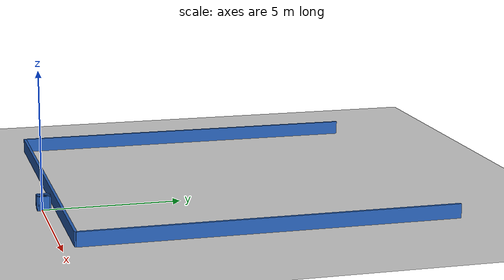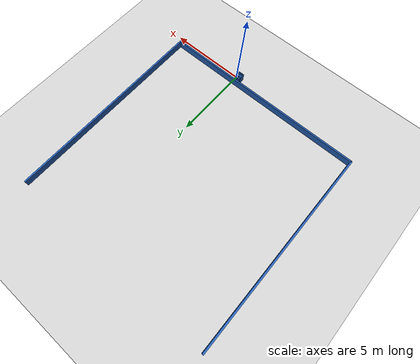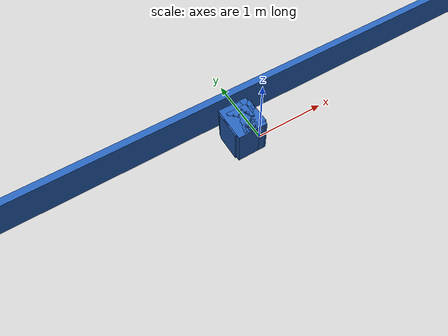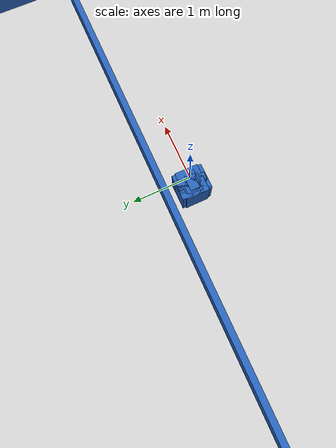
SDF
<?xml version="1.0" ?>
    <sdf version="1.5">
      <world name="default">
        <!-- A global light source -->
        <include>
          <uri>model://sun</uri>
        </include>
        <!-- A ground plane -->
        <include>
          <uri>model://ground_plane</uri>
        </include>

    <model name='libopen_space_final_T2B_126_41'>
      <static>1</static>
      <pose frame=''>-0.225000 0.075000 0.000000 0.000000 0.000000 0.000000</pose>
      <link name='link'>
        <inertial>
          <mass>1</mass>
          <inertia>
            <ixx>0.145833</ixx>
            <ixy>0</ixy>
            <ixz>0</ixz>
            <iyy>0.145833</iyy>
            <iyz>0</iyz>
            <izz>0.125</izz>
          </inertia>
        </inertial>
        <collision name='collision'>
          <geometry>
            <box>
              <size>0.35 0.21 1</size>
            </box>
          </geometry>
          <max_contacts>10</max_contacts>
          <surface>
            <contact>
              <ode/>
            </contact>
            <bounce/>
            <friction>
              <torsional>
                <ode/>
              </torsional>
              <ode/>
            </friction>
          </surface>
        </collision>
        <visual name='visual'>
          <geometry>
            <box>
              <size>0.35 0.21 1</size>
            </box>
          </geometry>
	    <material>
              <ambient>0.152000 0.379000 0.720000 1</ambient>
	      <diffuse>0.152000 0.379000 0.720000 1</diffuse>
          </material>
          <material>
            <script>
              <name>Gazebo/Grey</name>
              <uri>file://media/materials/scripts/gazebo.material</uri>
            </script>
          </material>
        </visual>
        <self_collide>0</self_collide>
        <kinematic>0</kinematic>
        <gravity>1</gravity>
      </link>
      <plugin name='libopen_space_final_T2B_126_41' filename='libopen_space_final_T2B_126_41.so'/>
    </model>

    <model name='libopen_space_final_T2B_79_93'>
      <static>1</static>
      <pose frame=''>-0.225000 0.075000 0.000000 0.000000 0.000000 0.000000</pose>
      <link name='link'>
        <inertial>
          <mass>1</mass>
          <inertia>
            <ixx>0.145833</ixx>
            <ixy>0</ixy>
            <ixz>0</ixz>
            <iyy>0.145833</iyy>
            <iyz>0</iyz>
            <izz>0.125</izz>
          </inertia>
        </inertial>
        <collision name='collision'>
          <geometry>
            <box>
              <size>0.31 0.27 1</size>
            </box>
          </geometry>
          <max_contacts>10</max_contacts>
          <surface>
            <contact>
              <ode/>
            </contact>
            <bounce/>
            <friction>
              <torsional>
                <ode/>
              </torsional>
              <ode/>
            </friction>
          </surface>
        </collision>
        <visual name='visual'>
          <geometry>
            <box>
              <size>0.31 0.27 1</size>
            </box>
          </geometry>
	    <material>
              <ambient>0.152000 0.379000 0.720000 1</ambient>
	      <diffuse>0.152000 0.379000 0.720000 1</diffuse>
          </material>
          <material>
            <script>
              <name>Gazebo/Grey</name>
              <uri>file://media/materials/scripts/gazebo.material</uri>
            </script>
          </material>
        </visual>
        <self_collide>0</self_collide>
        <kinematic>0</kinematic>
        <gravity>1</gravity>
      </link>
      <plugin name='libopen_space_final_T2B_79_93' filename='libopen_space_final_T2B_79_93.so'/>
    </model>

    <model name='libopen_space_final_T2B_92_34'>
      <static>1</static>
      <pose frame=''>-0.225000 0.075000 0.000000 0.000000 0.000000 0.000000</pose>
      <link name='link'>
        <inertial>
          <mass>1</mass>
          <inertia>
            <ixx>0.145833</ixx>
            <ixy>0</ixy>
            <ixz>0</ixz>
            <iyy>0.145833</iyy>
            <iyz>0</iyz>
            <izz>0.125</izz>
          </inertia>
        </inertial>
        <collision name='collision'>
          <geometry>
            <box>
              <size>0.13 0.46 1</size>
            </box>
          </geometry>
          <max_contacts>10</max_contacts>
          <surface>
            <contact>
              <ode/>
            </contact>
            <bounce/>
            <friction>
              <torsional>
                <ode/>
              </torsional>
              <ode/>
            </friction>
          </surface>
        </collision>
        <visual name='visual'>
          <geometry>
            <box>
              <size>0.13 0.46 1</size>
            </box>
          </geometry>
	    <material>
              <ambient>0.152000 0.379000 0.720000 1</ambient>
	      <diffuse>0.152000 0.379000 0.720000 1</diffuse>
          </material>
          <material>
            <script>
              <name>Gazebo/Grey</name>
              <uri>file://media/materials/scripts/gazebo.material</uri>
            </script>
          </material>
        </visual>
        <self_collide>0</self_collide>
        <kinematic>0</kinematic>
        <gravity>1</gravity>
      </link>
      <plugin name='libopen_space_final_T2B_92_34' filename='libopen_space_final_T2B_92_34.so'/>
    </model>

    <model name='libopen_space_final_T2B_147_27'>
      <static>1</static>
      <pose frame=''>-0.225000 0.075000 0.000000 0.000000 0.000000 0.000000</pose>
      <link name='link'>
        <inertial>
          <mass>1</mass>
          <inertia>
            <ixx>0.145833</ixx>
            <ixy>0</ixy>
            <ixz>0</ixz>
            <iyy>0.145833</iyy>
            <iyz>0</iyz>
            <izz>0.125</izz>
          </inertia>
        </inertial>
        <collision name='collision'>
          <geometry>
            <box>
              <size>0.43 0.20 1</size>
            </box>
          </geometry>
          <max_contacts>10</max_contacts>
          <surface>
            <contact>
              <ode/>
            </contact>
            <bounce/>
            <friction>
              <torsional>
                <ode/>
              </torsional>
              <ode/>
            </friction>
          </surface>
        </collision>
        <visual name='visual'>
          <geometry>
            <box>
              <size>0.43 0.20 1</size>
            </box>
          </geometry>
	    <material>
              <ambient>0.152000 0.379000 0.720000 1</ambient>
	      <diffuse>0.152000 0.379000 0.720000 1</diffuse>
          </material>
          <material>
            <script>
              <name>Gazebo/Grey</name>
              <uri>file://media/materials/scripts/gazebo.material</uri>
            </script>
          </material>
        </visual>
        <self_collide>0</self_collide>
        <kinematic>0</kinematic>
        <gravity>1</gravity>
      </link>
      <plugin name='libopen_space_final_T2B_147_27' filename='libopen_space_final_T2B_147_27.so'/>
    </model>

    <model name='libopen_space_final_T2B_55_44'>
      <static>1</static>
      <pose frame=''>-0.225000 0.075000 0.000000 0.000000 0.000000 0.000000</pose>
      <link name='link'>
        <inertial>
          <mass>1</mass>
          <inertia>
            <ixx>0.145833</ixx>
            <ixy>0</ixy>
            <ixz>0</ixz>
            <iyy>0.145833</iyy>
            <iyz>0</iyz>
            <izz>0.125</izz>
          </inertia>
        </inertial>
        <collision name='collision'>
          <geometry>
            <box>
              <size>0.21 0.46 1</size>
            </box>
          </geometry>
          <max_contacts>10</max_contacts>
          <surface>
            <contact>
              <ode/>
            </contact>
            <bounce/>
            <friction>
              <torsional>
                <ode/>
              </torsional>
              <ode/>
            </friction>
          </surface>
        </collision>
        <visual name='visual'>
          <geometry>
            <box>
              <size>0.21 0.46 1</size>
            </box>
          </geometry>
	    <material>
              <ambient>0.152000 0.379000 0.720000 1</ambient>
	      <diffuse>0.152000 0.379000 0.720000 1</diffuse>
          </material>
          <material>
            <script>
              <name>Gazebo/Grey</name>
              <uri>file://media/materials/scripts/gazebo.material</uri>
            </script>
          </material>
        </visual>
        <self_collide>0</self_collide>
        <kinematic>0</kinematic>
        <gravity>1</gravity>
      </link>
      <plugin name='libopen_space_final_T2B_55_44' filename='libopen_space_final_T2B_55_44.so'/>
    </model>

    <model name='libopen_space_final_T2B_105_94'>
      <static>1</static>
      <pose frame=''>-0.225000 0.075000 0.000000 0.000000 0.000000 0.000000</pose>
      <link name='link'>
        <inertial>
          <mass>1</mass>
          <inertia>
            <ixx>0.145833</ixx>
            <ixy>0</ixy>
            <ixz>0</ixz>
            <iyy>0.145833</iyy>
            <iyz>0</iyz>
            <izz>0.125</izz>
          </inertia>
        </inertial>
        <collision name='collision'>
          <geometry>
            <box>
              <size>0.29 0.32 1</size>
            </box>
          </geometry>
          <max_contacts>10</max_contacts>
          <surface>
            <contact>
              <ode/>
            </contact>
            <bounce/>
            <friction>
              <torsional>
                <ode/>
              </torsional>
              <ode/>
            </friction>
          </surface>
        </collision>
        <visual name='visual'>
          <geometry>
            <box>
              <size>0.29 0.32 1</size>
            </box>
          </geometry>
	    <material>
              <ambient>0.152000 0.379000 0.720000 1</ambient>
	      <diffuse>0.152000 0.379000 0.720000 1</diffuse>
          </material>
          <material>
            <script>
              <name>Gazebo/Grey</name>
              <uri>file://media/materials/scripts/gazebo.material</uri>
            </script>
          </material>
        </visual>
        <self_collide>0</self_collide>
        <kinematic>0</kinematic>
        <gravity>1</gravity>
      </link>
      <plugin name='libopen_space_final_T2B_105_94' filename='libopen_space_final_T2B_105_94.so'/>
    </model>

    <model name='libopen_space_final_T2B_112_98'>
      <static>1</static>
      <pose frame=''>-0.225000 0.075000 0.000000 0.000000 0.000000 0.000000</pose>
      <link name='link'>
        <inertial>
          <mass>1</mass>
          <inertia>
            <ixx>0.145833</ixx>
            <ixy>0</ixy>
            <ixz>0</ixz>
            <iyy>0.145833</iyy>
            <iyz>0</iyz>
            <izz>0.125</izz>
          </inertia>
        </inertial>
        <collision name='collision'>
          <geometry>
            <box>
              <size>0.14 0.48 1</size>
            </box>
          </geometry>
          <max_contacts>10</max_contacts>
          <surface>
            <contact>
              <ode/>
            </contact>
            <bounce/>
            <friction>
              <torsional>
                <ode/>
              </torsional>
              <ode/>
            </friction>
          </surface>
        </collision>
        <visual name='visual'>
          <geometry>
            <box>
              <size>0.14 0.48 1</size>
            </box>
          </geometry>
	    <material>
              <ambient>0.152000 0.379000 0.720000 1</ambient>
	      <diffuse>0.152000 0.379000 0.720000 1</diffuse>
          </material>
          <material>
            <script>
              <name>Gazebo/Grey</name>
              <uri>file://media/materials/scripts/gazebo.material</uri>
            </script>
          </material>
        </visual>
        <self_collide>0</self_collide>
        <kinematic>0</kinematic>
        <gravity>1</gravity>
      </link>
      <plugin name='libopen_space_final_T2B_112_98' filename='libopen_space_final_T2B_112_98.so'/>
    </model>

    <model name='libopen_space_final_T2B_80_26'>
      <static>1</static>
      <pose frame=''>-0.225000 0.075000 0.000000 0.000000 0.000000 0.000000</pose>
      <link name='link'>
        <inertial>
          <mass>1</mass>
          <inertia>
            <ixx>0.145833</ixx>
            <ixy>0</ixy>
            <ixz>0</ixz>
            <iyy>0.145833</iyy>
            <iyz>0</iyz>
            <izz>0.125</izz>
          </inertia>
        </inertial>
        <collision name='collision'>
          <geometry>
            <box>
              <size>0.21 0.27 1</size>
            </box>
          </geometry>
          <max_contacts>10</max_contacts>
          <surface>
            <contact>
              <ode/>
            </contact>
            <bounce/>
            <friction>
              <torsional>
                <ode/>
              </torsional>
              <ode/>
            </friction>
          </surface>
        </collision>
        <visual name='visual'>
          <geometry>
            <box>
              <size>0.21 0.27 1</size>
            </box>
          </geometry>
	    <material>
              <ambient>0.152000 0.379000 0.720000 1</ambient>
	      <diffuse>0.152000 0.379000 0.720000 1</diffuse>
          </material>
          <material>
            <script>
              <name>Gazebo/Grey</name>
              <uri>file://media/materials/scripts/gazebo.material</uri>
            </script>
          </material>
        </visual>
        <self_collide>0</self_collide>
        <kinematic>0</kinematic>
        <gravity>1</gravity>
      </link>
      <plugin name='libopen_space_final_T2B_80_26' filename='libopen_space_final_T2B_80_26.so'/>
    </model>

    <model name='libopen_space_final_T2B_64_52'>
      <static>1</static>
      <pose frame=''>-0.225000 0.075000 0.000000 0.000000 0.000000 0.000000</pose>
      <link name='link'>
        <inertial>
          <mass>1</mass>
          <inertia>
            <ixx>0.145833</ixx>
            <ixy>0</ixy>
            <ixz>0</ixz>
            <iyy>0.145833</iyy>
            <iyz>0</iyz>
            <izz>0.125</izz>
          </inertia>
        </inertial>
        <collision name='collision'>
          <geometry>
            <box>
              <size>0.30 0.19 1</size>
            </box>
          </geometry>
          <max_contacts>10</max_contacts>
          <surface>
            <contact>
              <ode/>
            </contact>
            <bounce/>
            <friction>
              <torsional>
                <ode/>
              </torsional>
              <ode/>
            </friction>
          </surface>
        </collision>
        <visual name='visual'>
          <geometry>
            <box>
              <size>0.30 0.19 1</size>
            </box>
          </geometry>
	    <material>
              <ambient>0.152000 0.379000 0.720000 1</ambient>
	      <diffuse>0.152000 0.379000 0.720000 1</diffuse>
          </material>
          <material>
            <script>
              <name>Gazebo/Grey</name>
              <uri>file://media/materials/scripts/gazebo.material</uri>
            </script>
          </material>
        </visual>
        <self_collide>0</self_collide>
        <kinematic>0</kinematic>
        <gravity>1</gravity>
      </link>
      <plugin name='libopen_space_final_T2B_64_52' filename='libopen_space_final_T2B_64_52.so'/>
    </model>

    <model name='libopen_space_final_T2B_120_45'>
      <static>1</static>
      <pose frame=''>-0.225000 0.075000 0.000000 0.000000 0.000000 0.000000</pose>
      <link name='link'>
        <inertial>
          <mass>1</mass>
          <inertia>
            <ixx>0.145833</ixx>
            <ixy>0</ixy>
            <ixz>0</ixz>
            <iyy>0.145833</iyy>
            <iyz>0</iyz>
            <izz>0.125</izz>
          </inertia>
        </inertial>
        <collision name='collision'>
          <geometry>
            <box>
              <size>0.27 0.32 1</size>
            </box>
          </geometry>
          <max_contacts>10</max_contacts>
          <surface>
            <contact>
              <ode/>
            </contact>
            <bounce/>
            <friction>
              <torsional>
                <ode/>
              </torsional>
              <ode/>
            </friction>
          </surface>
        </collision>
        <visual name='visual'>
          <geometry>
            <box>
              <size>0.27 0.32 1</size>
            </box>
          </geometry>
	    <material>
              <ambient>0.152000 0.379000 0.720000 1</ambient>
	      <diffuse>0.152000 0.379000 0.720000 1</diffuse>
          </material>
          <material>
            <script>
              <name>Gazebo/Grey</name>
              <uri>file://media/materials/scripts/gazebo.material</uri>
            </script>
          </material>
        </visual>
        <self_collide>0</self_collide>
        <kinematic>0</kinematic>
        <gravity>1</gravity>
      </link>
      <plugin name='libopen_space_final_T2B_120_45' filename='libopen_space_final_T2B_120_45.so'/>
    </model>

    <model name='libopen_space_final_T2B_122_30'>
      <static>1</static>
      <pose frame=''>-0.225000 0.075000 0.000000 0.000000 0.000000 0.000000</pose>
      <link name='link'>
        <inertial>
          <mass>1</mass>
          <inertia>
            <ixx>0.145833</ixx>
            <ixy>0</ixy>
            <ixz>0</ixz>
            <iyy>0.145833</iyy>
            <iyz>0</iyz>
            <izz>0.125</izz>
          </inertia>
        </inertial>
        <collision name='collision'>
          <geometry>
            <box>
              <size>0.41 0.49 1</size>
            </box>
          </geometry>
          <max_contacts>10</max_contacts>
          <surface>
            <contact>
              <ode/>
            </contact>
            <bounce/>
            <friction>
              <torsional>
                <ode/>
              </torsional>
              <ode/>
            </friction>
          </surface>
        </collision>
        <visual name='visual'>
          <geometry>
            <box>
              <size>0.41 0.49 1</size>
            </box>
          </geometry>
	    <material>
              <ambient>0.152000 0.379000 0.720000 1</ambient>
	      <diffuse>0.152000 0.379000 0.720000 1</diffuse>
          </material>
          <material>
            <script>
              <name>Gazebo/Grey</name>
              <uri>file://media/materials/scripts/gazebo.material</uri>
            </script>
          </material>
        </visual>
        <self_collide>0</self_collide>
        <kinematic>0</kinematic>
        <gravity>1</gravity>
      </link>
      <plugin name='libopen_space_final_T2B_122_30' filename='libopen_space_final_T2B_122_30.so'/>
    </model>

    <model name='libopen_space_final_T2B_122_2'>
      <static>1</static>
      <pose frame=''>-0.225000 0.075000 0.000000 0.000000 0.000000 0.000000</pose>
      <link name='link'>
        <inertial>
          <mass>1</mass>
          <inertia>
            <ixx>0.145833</ixx>
            <ixy>0</ixy>
            <ixz>0</ixz>
            <iyy>0.145833</iyy>
            <iyz>0</iyz>
            <izz>0.125</izz>
          </inertia>
        </inertial>
        <collision name='collision'>
          <geometry>
            <box>
              <size>0.45 0.38 1</size>
            </box>
          </geometry>
          <max_contacts>10</max_contacts>
          <surface>
            <contact>
              <ode/>
            </contact>
            <bounce/>
            <friction>
              <torsional>
                <ode/>
              </torsional>
              <ode/>
            </friction>
          </surface>
        </collision>
        <visual name='visual'>
          <geometry>
            <box>
              <size>0.45 0.38 1</size>
            </box>
          </geometry>
	    <material>
              <ambient>0.152000 0.379000 0.720000 1</ambient>
	      <diffuse>0.152000 0.379000 0.720000 1</diffuse>
          </material>
          <material>
            <script>
              <name>Gazebo/Grey</name>
              <uri>file://media/materials/scripts/gazebo.material</uri>
            </script>
          </material>
        </visual>
        <self_collide>0</self_collide>
        <kinematic>0</kinematic>
        <gravity>1</gravity>
      </link>
      <plugin name='libopen_space_final_T2B_122_2' filename='libopen_space_final_T2B_122_2.so'/>
    </model>

    <model name='libopen_space_final_T2B_111_18'>
      <static>1</static>
      <pose frame=''>-0.225000 0.075000 0.000000 0.000000 0.000000 0.000000</pose>
      <link name='link'>
        <inertial>
          <mass>1</mass>
          <inertia>
            <ixx>0.145833</ixx>
            <ixy>0</ixy>
            <ixz>0</ixz>
            <iyy>0.145833</iyy>
            <iyz>0</iyz>
            <izz>0.125</izz>
          </inertia>
        </inertial>
        <collision name='collision'>
          <geometry>
            <box>
              <size>0.25 0.15 1</size>
            </box>
          </geometry>
          <max_contacts>10</max_contacts>
          <surface>
            <contact>
              <ode/>
            </contact>
            <bounce/>
            <friction>
              <torsional>
                <ode/>
              </torsional>
              <ode/>
            </friction>
          </surface>
        </collision>
        <visual name='visual'>
          <geometry>
            <box>
              <size>0.25 0.15 1</size>
            </box>
          </geometry>
	    <material>
              <ambient>0.152000 0.379000 0.720000 1</ambient>
	      <diffuse>0.152000 0.379000 0.720000 1</diffuse>
          </material>
          <material>
            <script>
              <name>Gazebo/Grey</name>
              <uri>file://media/materials/scripts/gazebo.material</uri>
            </script>
          </material>
        </visual>
        <self_collide>0</self_collide>
        <kinematic>0</kinematic>
        <gravity>1</gravity>
      </link>
      <plugin name='libopen_space_final_T2B_111_18' filename='libopen_space_final_T2B_111_18.so'/>
    </model>

    <model name='libopen_space_final_T2B_51_1'>
      <static>1</static>
      <pose frame=''>-0.225000 0.075000 0.000000 0.000000 0.000000 0.000000</pose>
      <link name='link'>
        <inertial>
          <mass>1</mass>
          <inertia>
            <ixx>0.145833</ixx>
            <ixy>0</ixy>
            <ixz>0</ixz>
            <iyy>0.145833</iyy>
            <iyz>0</iyz>
            <izz>0.125</izz>
          </inertia>
        </inertial>
        <collision name='collision'>
          <geometry>
            <box>
              <size>0.36 0.49 1</size>
            </box>
          </geometry>
          <max_contacts>10</max_contacts>
          <surface>
            <contact>
              <ode/>
            </contact>
            <bounce/>
            <friction>
              <torsional>
                <ode/>
              </torsional>
              <ode/>
            </friction>
          </surface>
        </collision>
        <visual name='visual'>
          <geometry>
            <box>
              <size>0.36 0.49 1</size>
            </box>
          </geometry>
	    <material>
              <ambient>0.152000 0.379000 0.720000 1</ambient>
	      <diffuse>0.152000 0.379000 0.720000 1</diffuse>
          </material>
          <material>
            <script>
              <name>Gazebo/Grey</name>
              <uri>file://media/materials/scripts/gazebo.material</uri>
            </script>
          </material>
        </visual>
        <self_collide>0</self_collide>
        <kinematic>0</kinematic>
        <gravity>1</gravity>
      </link>
      <plugin name='libopen_space_final_T2B_51_1' filename='libopen_space_final_T2B_51_1.so'/>
    </model>

        <model name='bottom_wall'>
          <static>1</static>
          <pose frame=''>-2.25 0.5 0.000000 0.000000 0.000000 1.57079632</pose>
          <link name='link'>
            <inertial>
            <mass>1</mass>
            <inertia>
              <ixx>0.145833</ixx>
              <ixy>0</ixy>
              <ixz>0</ixz>
              <iyy>0.145833</iyy>
              <iyz>0</iyz>
              <izz>0.125</izz>
            </inertia>
            </inertial>
            <collision name='collision'>
            <geometry>
              <box>
              <size>0.1 13.5 1</size>
              </box>
            </geometry>
            <max_contacts>10</max_contacts>
            <surface>
              <contact>
              <ode/>
              </contact>
              <bounce/>
              <friction>
              <torsional>
                <ode/>
              </torsional>
              <ode/>
              </friction>
            </surface>
            </collision>
            <visual name='visual'>
            <geometry>
              <box>
              <size>0.1 13.5 1</size>
              </box>
            </geometry>
            <material>
              <ambient>0.152000 0.379000 0.720000 1</ambient>
            <diffuse>0.152000 0.379000 0.720000 1</diffuse>
            </material>
            <material>
              <script>
              <name>Gazebo/Grey</name>
              <uri>file://media/materials/scripts/gazebo.material</uri>
              </script>
            </material>
            </visual>
            <self_collide>0</self_collide>
            <kinematic>0</kinematic>
            <gravity>1</gravity>
          </link>
        </model>

        <model name='left_wall'>
          <static>1</static>
          <pose frame=''>-9 7.25 0.000000 0.000000 0.000000 0.000000</pose>
          <link name='link'>
            <inertial>
            <mass>1</mass>
            <inertia>
              <ixx>0.145833</ixx>
              <ixy>0</ixy>
              <ixz>0</ixz>
              <iyy>0.145833</iyy>
              <iyz>0</iyz>
              <izz>0.125</izz>
            </inertia>
            </inertial>
            <collision name='collision'>
            <geometry>
              <box>
              <size>0.1 13.5 1</size>
              </box>
            </geometry>
            <max_contacts>10</max_contacts>
            <surface>
              <contact>
              <ode/>
              </contact>
              <bounce/>
              <friction>
              <torsional>
                <ode/>
              </torsional>
              <ode/>
              </friction>
            </surface>
            </collision>
            <visual name='visual'>
            <geometry>
              <box>
              <size>0.1 13.5 1</size>
              </box>
            </geometry>
            <material>
              <ambient>0.152000 0.379000 0.720000 1</ambient>
            <diffuse>0.152000 0.379000 0.720000 1</diffuse>
            </material>
            <material>
              <script>
              <name>Gazebo/Grey</name>
              <uri>file://media/materials/scripts/gazebo.material</uri>
              </script>
            </material>
            </visual>
            <self_collide>0</self_collide>
            <kinematic>0</kinematic>
            <gravity>1</gravity>
          </link>
        </model>

        <model name='right_wall'>
          <static>1</static>
          <pose frame=''>4.5 7.25 0.000000 0.000000 0.000000 0.000000</pose>
          <link name='link'>
            <inertial>
            <mass>1</mass>
            <inertia>
              <ixx>0.145833</ixx>
              <ixy>0</ixy>
              <ixz>0</ixz>
              <iyy>0.145833</iyy>
              <iyz>0</iyz>
              <izz>0.125</izz>
            </inertia>
            </inertial>
            <collision name='collision'>
            <geometry>
              <box>
              <size>0.1 13.5 1</size>
              </box>
            </geometry>
            <max_contacts>10</max_contacts>
            <surface>
              <contact>
              <ode/>
              </contact>
              <bounce/>
              <friction>
              <torsional>
                <ode/>
              </torsional>
              <ode/>
              </friction>
            </surface>
            </collision>
            <visual name='visual'>
            <geometry>
              <box>
              <size>0.1 13.5 1</size>
              </box>
            </geometry>
            <material>
              <ambient>0.152000 0.379000 0.720000 1</ambient>
            <diffuse>0.152000 0.379000 0.720000 1</diffuse>
            </material>
            <material>
              <script>
              <name>Gazebo/Grey</name>
              <uri>file://media/materials/scripts/gazebo.material</uri>
              </script>
            </material>
            </visual>
            <self_collide>0</self_collide>
            <kinematic>0</kinematic>
            <gravity>1</gravity>
          </link>
        </model>

      </world>
    </sdf>"
